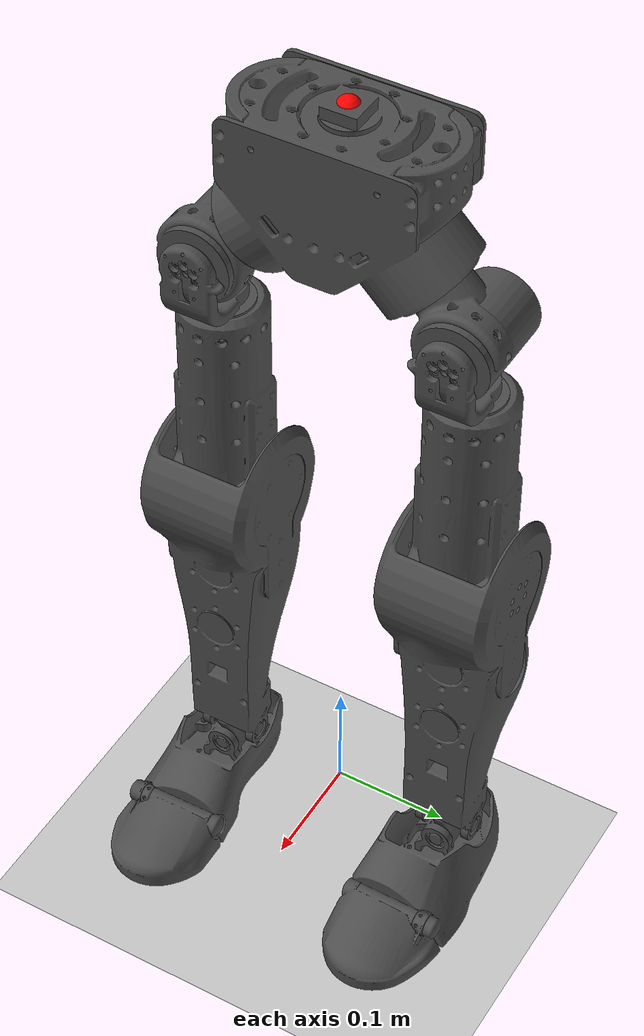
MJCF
<mujoco model="Asimov Task">

  <!-- include robot model -->
  <include file="asimov.xml"/>

  <!-- simulation settings -->
  <size memory="1M"/>
  <option gravity="0 0 -9.81" timestep="0.002" integrator="RK4"/>
  <compiler angle="radian"/>

  <asset>
    <!-- define a procedural checker texture -->
    <texture name="grid" type="2d" builtin="checker" width="512" height="512"
            rgb1="0.2 0.2 0.2" rgb2="0.8 0.8 0.8" mark="none" />

    <!-- material using that texture -->
    <material name="grey_grid" texture="grid" texrepeat="5 5" reflectance="0.2" />
  </asset>

  <actuator>
      <motor name="left_hip_pitch_joint" joint="left_hip_pitch_joint" ctrllimited="true" ctrlrange="-40 40"/>
      <motor name="left_hip_roll_joint" joint="left_hip_roll_joint" ctrllimited="true" ctrlrange="-40 40"/>
      <motor name="left_hip_yaw_joint" joint="left_hip_yaw_joint" ctrllimited="true" ctrlrange="-30 30"/>
      <motor name="left_knee_joint" joint="left_knee_joint" ctrllimited="true" ctrlrange="-60 60"/>
      <motor name="left_ankle_pitch_joint" joint="left_ankle_pitch_joint" ctrllimited="true" ctrlrange="-25 25"/>
      <motor name="left_ankle_roll_joint" joint="left_ankle_roll_joint" ctrllimited="true" ctrlrange="-15 15"/>

      <motor name="right_hip_pitch_joint" joint="right_hip_pitch_joint" ctrllimited="true" ctrlrange="-40 40"/>
      <motor name="right_hip_roll_joint" joint="right_hip_roll_joint" ctrllimited="true" ctrlrange="-40 40"/>
      <motor name="right_hip_yaw_joint" joint="right_hip_yaw_joint" ctrllimited="true" ctrlrange="-30 30"/>
      <motor name="right_knee_joint" joint="right_knee_joint" ctrllimited="true" ctrlrange="-60 60"/>
      <motor name="right_ankle_pitch_joint" joint="right_ankle_pitch_joint" ctrllimited="true" ctrlrange="-25 25"/>
      <motor name="right_ankle_roll_joint" joint="right_ankle_roll_joint" ctrllimited="true" ctrlrange="-15 15"/>
  </actuator>

  <sensor>
      <framequat name="orientation" objtype="site" noise="0.001" objname="imu" />
      <gyro name="angular-velocity" site="imu" noise="0.005" />
  </sensor>

  <!-- visualization -->
  <visual>
    <headlight diffuse="0.6 0.6 0.6" ambient="0.3 0.3 0.3" specular="0.3 0.3 0.3"/>
    <map znear="0.01" zfar="50"/>
  </visual>

  <statistic extent="1.5" center="0 0 0.5"/>

  <!-- world setup -->
  <worldbody>

  <geom name="floor" type="plane" size="5 5 0.1" pos="0 0 -0.05"
      rgba="0.8 0.8 0.8 1" material="grey_grid" friction="1.0 0.1 0.1" condim="3"/>

    <light name="sun" pos="0 0 5" dir="0 0 -1"
           diffuse="0.8 0.8 0.8" specular="0.3 0.3 0.3"
           directional="true"/>
  </worldbody>

</mujoco>

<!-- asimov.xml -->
<mujoco model="asimov">
  <default>
    <default class="robot">
      <default class="motor">
        <joint/>
        <motor/>
      </default>
      <default class="visual">
        <geom material="visual_grey" contype="0" conaffinity="0" group="2"/>
      </default>
      <default class="collision">
        <geom material="collision_grey" condim="3" contype="0" conaffinity="1"
              priority="1" group="1" solref="0.005 1" solimp="0.99 0.999 1e-05"
              friction="1 0.01 0.01"/>
      </default>
    </default>
  </default>

  <compiler angle="radian" />

  <asset>
    <material name="visual_grey" rgba="0.6 0.6 0.6 1"/>       <!-- main robot color -->
    <material name="collision_grey" rgba="0.3 0.3 0.3 1"/>    <!-- for collisions -->
    <material name="dark_gray" rgba="0.1098 0.1098 0.1098 1"/>

    <mesh name="pelvis_link.STL" file="../meshes/pelvis_link.STL"/>
    <mesh name="left_hip_pitch_link.STL" file="../meshes/left_hip_pitch_link.STL"/>
    <mesh name="left_hip_roll_link.STL" file="../meshes/left_hip_roll_link.STL"/>
    <mesh name="left_hip_yaw_link.STL" file="../meshes/left_hip_yaw_link.STL"/>
    <mesh name="left_knee_link.STL" file="../meshes/left_knee_link.STL"/>
    <mesh name="left_ankle_pitch_link.STL" file="../meshes/left_ankle_pitch_link.STL"/>
    <mesh name="left_ankle_roll_link.STL" file="../meshes/left_ankle_roll_link.STL"/>
    <mesh name="right_hip_pitch_link.STL" file="../meshes/right_hip_pitch_link.STL"/>
    <mesh name="right_hip_roll_link.STL" file="../meshes/right_hip_roll_link.STL"/>
    <mesh name="right_hip_yaw_link.STL" file="../meshes/right_hip_yaw_link.STL"/>
    <mesh name="right_knee_link.STL" file="../meshes/right_knee_link.STL"/>
    <mesh name="right_ankle_pitch_link.STL" file="../meshes/right_ankle_pitch_link.STL"/>
    <mesh name="right_ankle_roll_link.STL" file="../meshes/right_ankle_roll_link.STL"/>
  </asset>

  <worldbody>
    <body name="asimov_base" pos="0.00000000 0.00000000 0.70899500" quat="1 0 0 0" childclass="robot">
      <freejoint name="floating_base" />
      <body name="pelvis_link" pos="0 0 0" quat="1 0 0 0">
        <inertial pos="-0.00071228 -3.4719E-07 -0.073826" quat="1.0 0.0 0.0 0.0" mass="3.3125" diaginertia="0.0033117 0.0028238 0.003564" />
       <site name="imu" pos="0.0 0.0 0.0" size="0.01" rgba="1 0 0 1" type="sphere" />

        <geom name="pelvis_link_collision" pos="0 0 0" quat="1.0 0.0 0.0 0.0" type="mesh" mesh="pelvis_link.STL" class="collision" />
        <geom name="pelvis_link_visual" pos="0 0 0" quat="1.0 0.0 0.0 0.0" type="mesh" mesh="pelvis_link.STL" class="visual" />
        <body name="left_hip_pitch_link" pos="0 0.056569 -0.10543" quat="1.0 0.0 0.0 0.0">
          <joint name="left_hip_pitch_joint" type="hinge" ref="0.0" class="motor" range="-3.1416 1.0472" axis="0 -0.70711 0.70711" />
          <site name="left_hip_pitch_joint_site" pos="0 0 0" quat="1 0 0 0" />
          <inertial pos="0.00329 0.045581 -0.045581" quat="1.0 0.0 0.0 0.0" mass="0.92565" diaginertia="0.00053984 0.00066418 0.00066419" />
          <geom name="left_hip_pitch_link_collision" pos="0 0 0" quat="1.0 0.0 0.0 0.0" type="mesh" mesh="left_hip_pitch_link.STL" class="collision" />
          <geom name="left_hip_pitch_link_visual" pos="0 0 0" quat="1.0 0.0 0.0 0.0" type="mesh" mesh="left_hip_pitch_link.STL" class="visual" />
          <body name="left_hip_roll_link" pos="0 0.051265 -0.051265" quat="1.0 0.0 0.0 0.0">
            <joint name="left_hip_roll_joint" type="hinge" ref="0.0" class="motor" range="-2.97 0.52" axis="-1 0 0" />
            <site name="left_hip_roll_joint_site" pos="0 0 0" quat="1 0 0 0" />
            <inertial pos="0.01525 -0.00017964 -0.061059" quat="1.0 0.0 0.0 0.0" mass="0.83528" diaginertia="0.00054401 0.00063585 0.00038113" />
            <geom name="left_hip_roll_link_collision" pos="0 0 0" quat="1.0 0.0 0.0 0.0" type="mesh" mesh="left_hip_roll_link.STL" class="collision" />
            <geom name="left_hip_roll_link_visual" pos="0 0 0" quat="1.0 0.0 0.0 0.0" type="mesh" mesh="left_hip_roll_link.STL" class="visual" />
            <body name="left_hip_yaw_link" pos="0 0 -0.09275" quat="1.0 0.0 0.0 0.0">
              <joint name="left_hip_yaw_joint" type="hinge" ref="0.0" class="motor" range="-2.76 2.76" axis="0 0 -1" />
              <site name="left_hip_yaw_joint_site" pos="0 0 0" quat="1 0 0 0" />
              <inertial pos="7.0761E-05 0.00031363 -0.11496" quat="1.0 0.0 0.0 0.0" mass="1.2782" diaginertia="0.0024302 0.0025065 0.0007566" />
              <geom name="left_hip_yaw_link_collision" pos="0 0 0" quat="1.0 0.0 0.0 0.0" type="mesh" mesh="left_hip_yaw_link.STL" class="collision" />
              <geom name="left_hip_yaw_link_visual" pos="0 0 0" quat="1.0 0.0 0.0 0.0" type="mesh" mesh="left_hip_yaw_link.STL" class="visual" />
              <body name="left_knee_link" pos="0 0 -0.15489" quat="1.0 0.0 0.0 0.0">
                <joint name="left_knee_joint" type="hinge" ref="0.0" class="motor" range="-2 0.09" axis="0 -1 0" />
                <site name="left_knee_joint_site" pos="0 0 0" quat="1 0 0 0" />
                <inertial pos="-0.0025212 0.00051084 -0.10659" quat="1.0 0.0 0.0 0.0" mass="2.2481" diaginertia="0.0093797 0.0095623 0.0023403" />
                <geom name="left_knee_link_collision" pos="0 0 0" quat="1.0 0.0 0.0 0.0" type="mesh" mesh="left_knee_link.STL" class="collision" />
                <geom name="left_knee_link_visual" pos="0 0 0" quat="1.0 0.0 0.0 0.0" type="mesh" mesh="left_knee_link.STL" class="visual" />
                <body name="left_ankle_pitch_link" pos="0 0 -0.29466" quat="1.0 0.0 0.0 0.0">
                  <joint name="left_ankle_pitch_joint" type="hinge" ref="0.0" class="motor" range="-0.36 0.36" axis="0 1 0" />
                  <site name="left_ankle_pitch_joint_site" pos="0 0 0" quat="1 0 0 0" />
                  <inertial pos="-0.0011784 -2.4418E-08 -0.0061736" quat="1.0 0.0 0.0 0.0" mass="0.27369" diaginertia="6.4443e-05 8.1172e-05 4.7493e-05" />
                  <geom name="left_ankle_pitch_link_collision" pos="0 0 0" quat="1.0 0.0 0.0 0.0" type="mesh" mesh="left_ankle_pitch_link.STL" class="collision" />
                  <geom name="left_ankle_pitch_link_visual" pos="0 0 0" quat="1.0 0.0 0.0 0.0" type="mesh" mesh="left_ankle_pitch_link.STL" class="visual" />
                  <body name="left_ankle_roll_link" pos="-0.0015 0 -0.01" quat="1.0 0.0 0.0 0.0">
                    <joint name="left_ankle_roll_joint" type="hinge" ref="0.0" class="motor" range="-0.261 0.261" axis="-1 0 0" />
                    <site name="left_ankle_roll_joint_site" pos="0 0 0" quat="1 0 0 0" />
                    <inertial pos="0.081381 -0.00033806 -0.015509" quat="1.0 0.0 0.0 0.0" mass="0.61291" diaginertia="0.00031968 0.00045036 0.00070504" />
                    <geom name="left_ankle_roll_link_collision" pos="0 0 0" quat="1.0 0.0 0.0 0.0" type="mesh" mesh="left_ankle_roll_link.STL" class="collision" />
                    <geom name="left_ankle_roll_link_visual" pos="0 0 0" quat="1.0 0.0 0.0 0.0" type="mesh" mesh="left_ankle_roll_link.STL" class="visual" />
                  </body>
                </body>
              </body>
            </body>
          </body>
        </body>
        <body name="right_hip_pitch_link" pos="0 -0.056569 -0.10543" quat="1.0 0.0 0.0 0.0">
          <joint name="right_hip_pitch_joint" type="hinge" ref="0.0" class="motor" range="-1.0472 3.1416" axis="0 0.70711 0.70711" />
          <site name="right_hip_pitch_joint_site" pos="0 0 0" quat="1 0 0 0" />
          <inertial pos="0.0032901 -0.045581 -0.045581" quat="1.0 0.0 0.0 0.0" mass="0.92565" diaginertia="0.00053984 0.00066418 0.00066418" />
          <geom name="right_hip_pitch_link_collision" pos="0 0 0" quat="1.0 0.0 0.0 0.0" type="mesh" mesh="right_hip_pitch_link.STL" class="collision" />
          <geom name="right_hip_pitch_link_visual" pos="0 0 0" quat="1.0 0.0 0.0 0.0" type="mesh" mesh="right_hip_pitch_link.STL" class="visual" />
          <body name="right_hip_roll_link" pos="0 -0.051265 -0.051265" quat="1.0 0.0 0.0 0.0">
            <joint name="right_hip_roll_joint" type="hinge" ref="0.0" class="motor" range="-0.52 2.97" axis="-1 0 0" />
            <site name="right_hip_roll_joint_site" pos="0 0 0" quat="1 0 0 0" />
            <inertial pos="0.01525 0.0001796 -0.061059" quat="1.0 0.0 0.0 0.0" mass="0.83528" diaginertia="0.00054401 0.00063584 0.00038113" />
            <geom name="right_hip_roll_link_collision" pos="0 0 0" quat="1.0 0.0 0.0 0.0" type="mesh" mesh="right_hip_roll_link.STL" class="collision" />
            <geom name="right_hip_roll_link_visual" pos="0 0 0" quat="1.0 0.0 0.0 0.0" type="mesh" mesh="right_hip_roll_link.STL" class="visual" />
            <body name="right_hip_yaw_link" pos="0 0 -0.09275" quat="1.0 0.0 0.0 0.0">
              <joint name="right_hip_yaw_joint" type="hinge" ref="0.0" class="motor" range="-2.76 2.76" axis="0 0 -1" />
              <site name="right_hip_yaw_joint_site" pos="0 0 0" quat="1 0 0 0" />
              <inertial pos="7.1067E-05 -0.00031339 -0.11496" quat="1.0 0.0 0.0 0.0" mass="1.2782" diaginertia="0.0024302 0.0025065 0.0007566" />
              <geom name="right_hip_yaw_link_collision" pos="0 0 0" quat="1.0 0.0 0.0 0.0" type="mesh" mesh="right_hip_yaw_link.STL" class="collision" />
              <geom name="right_hip_yaw_link_visual" pos="0 0 0" quat="1.0 0.0 0.0 0.0" type="mesh" mesh="right_hip_yaw_link.STL" class="visual" />
              <body name="right_knee_link" pos="0 0 -0.15489" quat="1.0 0.0 0.0 0.0">
                <joint name="right_knee_joint" type="hinge" ref="0.0" class="motor" range="-0.09 2" axis="0 1 0" />
                <site name="right_knee_joint_site" pos="0 0 0" quat="1 0 0 0" />
                <inertial pos="-0.0025213 -0.00051098 -0.10659" quat="1.0 0.0 0.0 0.0" mass="2.2481" diaginertia="0.0093796 0.0095623 0.0023403" />
                <geom name="right_knee_link_collision" pos="0 0 0" quat="1.0 0.0 0.0 0.0" type="mesh" mesh="right_knee_link.STL" class="collision" />
                <geom name="right_knee_link_visual" pos="0 0 0" quat="1.0 0.0 0.0 0.0" type="mesh" mesh="right_knee_link.STL" class="visual" />
                <body name="right_ankle_pitch_link" pos="0 0 -0.29466" quat="1.0 0.0 0.0 0.0">
                  <joint name="right_ankle_pitch_joint" type="hinge" ref="0.0" class="motor" range="-0.36 0.36" axis="0 -1 0" />
                  <site name="right_ankle_pitch_joint_site" pos="0 0 0" quat="1 0 0 0" />
                  <inertial pos="-0.0011784 5.9726E-08 -0.0061735" quat="1.0 0.0 0.0 0.0" mass="0.27369" diaginertia="6.4442e-05 8.1171e-05 4.7493e-05" />
                  <geom name="right_ankle_pitch_link_collision" pos="0 0 0" quat="1.0 0.0 0.0 0.0" type="mesh" mesh="right_ankle_pitch_link.STL" class="collision" />
                  <geom name="right_ankle_pitch_link_visual" pos="0 0 0" quat="1.0 0.0 0.0 0.0" type="mesh" mesh="right_ankle_pitch_link.STL" class="visual" />
                  <body name="right_ankle_roll_link" pos="-0.0015 0 -0.01" quat="1.0 0.0 0.0 0.0">
                    <joint name="right_ankle_roll_joint" type="hinge" ref="0.0" class="motor" range="-0.261 0.261" axis="-1 0 0" />
                    <site name="right_ankle_roll_joint_site" pos="0 0 0" quat="1 0 0 0" />
                    <inertial pos="0.081347 0.00027474 -0.015509" quat="1.0 0.0 0.0 0.0" mass="0.61291" diaginertia="0.0003197 0.00045029 0.00070498" />
                    <geom name="right_ankle_roll_link_collision" pos="0 0 0" quat="1.0 0.0 0.0 0.0" type="mesh" mesh="right_ankle_roll_link.STL" class="collision" />
                    <geom name="right_ankle_roll_link_visual" pos="0 0 0" quat="1.0 0.0 0.0 0.0" type="mesh" mesh="right_ankle_roll_link.STL" class="visual" />
                  </body>
                </body>
              </body>
            </body>
          </body>
        </body>
      </body>
      <site name="world_site" pos="0 0 0" quat="1 0 0 0" />
      <camera name="front_camera" mode="track" fovy="90.0" quat="4.329780281177467e-17 4.329780281177466e-17 0.7071067811865475 0.7071067811865476" pos="0.0 2.0 0.5" />
      <camera name="side_camera" mode="track" fovy="90.0" quat="-0.5 -0.4999999999999999 0.5 0.5000000000000001" pos="-2.0 0.0 0.5" />
    </body>
  </worldbody>

  <contact>
    <exclude body1="pelvis_link" body2="left_hip_pitch_link" />
    <exclude body1="left_hip_pitch_link" body2="left_hip_roll_link" />
    <exclude body1="left_hip_roll_link" body2="left_hip_yaw_link" />
    <exclude body1="left_hip_yaw_link" body2="left_knee_link" />
    <exclude body1="left_knee_link" body2="left_ankle_pitch_link" />
    <exclude body1="left_ankle_pitch_link" body2="left_ankle_roll_link" />
    <exclude body1="pelvis_link" body2="right_hip_pitch_link" />
    <exclude body1="right_hip_pitch_link" body2="right_hip_roll_link" />
    <exclude body1="right_hip_roll_link" body2="right_hip_yaw_link" />
    <exclude body1="right_hip_yaw_link" body2="right_knee_link" />
    <exclude body1="right_knee_link" body2="right_ankle_pitch_link" />
    <exclude body1="right_ankle_pitch_link" body2="right_ankle_roll_link" />
  </contact>

  <sensor>
    <framepos name="left_hip_pitch_joint_site_pos" objtype="site" objname="left_hip_pitch_joint_site" />
    <framequat name="left_hip_pitch_joint_site_quat" objtype="site" objname="left_hip_pitch_joint_site" />
    <framelinvel name="left_hip_pitch_joint_site_linvel" objtype="site" objname="left_hip_pitch_joint_site" />
    <frameangvel name="left_hip_pitch_joint_site_angvel" objtype="site" objname="left_hip_pitch_joint_site" />
    <velocimeter name="left_hip_pitch_joint_site_vel" site="left_hip_pitch_joint_site" />
  </sensor>
</mujoco>
